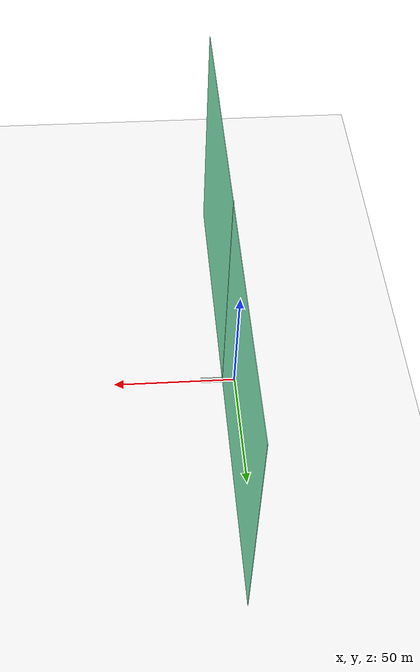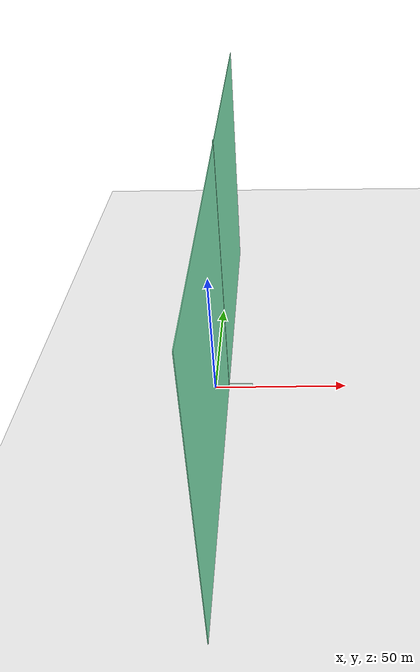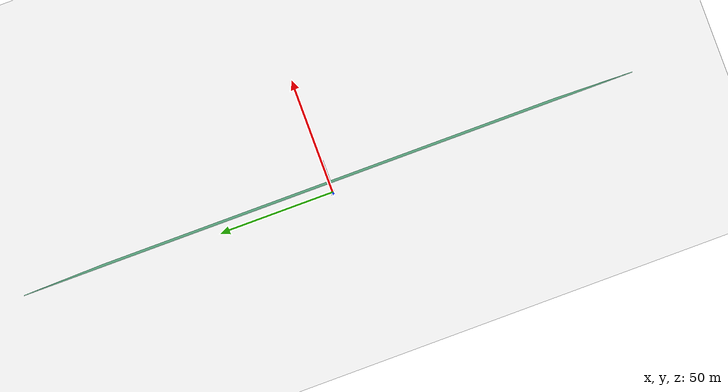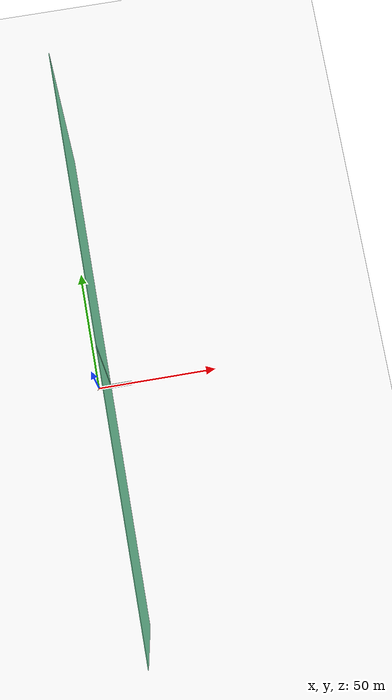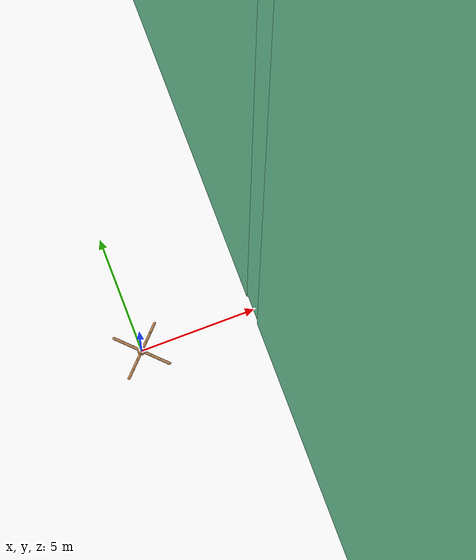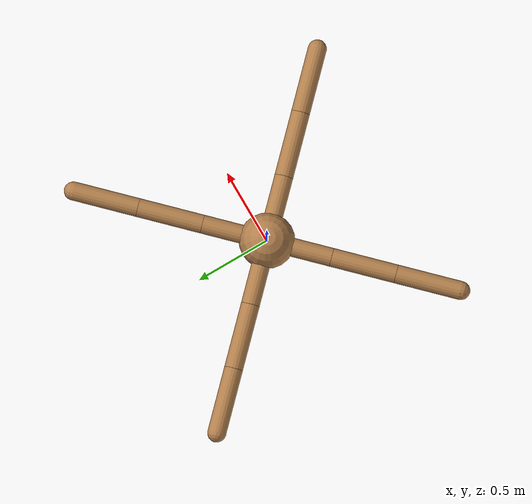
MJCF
<mujoco model="ant">
  <asset>
    <texture name="skybox" type="skybox" builtin="gradient" rgb1=".2 .3 .4" rgb2="0 0 0" width="800" height="800" mark="random" markrgb="1 1 1"/>
    <texture name="grid" type="2d" builtin="checker" rgb1=".2 .1 .2" rgb2=".3 .2 .3" width="300" height="300" mark="edge" markrgb=".3 .2 .3"/>
    <material name="grid" texture="grid" texrepeat="1 1" texuniform="true" reflectance=".2"/>
    <material name="self" rgba=".7 .5 .3 1"/>
  </asset>
  <visual>
    <headlight ambient=".4 .4 .4" diffuse=".8 .8 .8" specular="0.1 0.1 0.1"/>
    <map znear=".001"/>
    <quality shadowsize="16384"/>
  </visual>
  <compiler angle="degree" coordinate="global" inertiafromgeom="true"/>
  <option integrator="RK4" timestep="0.01"/>
  <default>
    <joint armature="1" damping="1" limited="true"/>
    <geom conaffinity="0" condim="3" density="100" friction="1 0.5 0.5" margin="0.01" rgba=".7 .5 .3 1"/>
  </default>
  <worldbody>
    <light cutoff="100" diffuse="1 1 1" dir="0.3 0 -1.3" directional="true" exponent="1" pos="-30 0 130" specular=".1 .1 .1"/>
    <geom conaffinity="1" condim="3" name="floor" pos="0 0 0" rgba="1 1 1 1" size="200 200 .125" type="plane" material="grid"/>
    <geom conaffinity="1" condim="3" name="wall_box_1" type="box" pos="5 50.6 50" size="0.1 50 50" rgba="0.5 0.9 0.7 1" />
    <geom conaffinity="1" condim="3" name="wall_box_2" type="box" pos="5 -50.6 50" size="0.1 50 50" rgba="0.5 0.9 0.7 1" />
    <geom conaffinity="1" condim="3" name="wall_box_3" type="box" pos="5 0 50.9" size="0.1 0.6 50" rgba="0.5 0.9 0.7 1" />
    <geom conaffinity="1" condim="3" name="tunnel_box_1" type="box" pos="9.6 0 1.1" size="4.5 0.6 0.1" rgba="0.5 0.9 0.7 0.3" />
    <geom conaffinity="1" condim="3" name="tunnel_box_2" type="box" pos="9.6 0.7 0.65" size="4.5 0.1 0.65" rgba="0.5 0.9 0.7 0.3" />
    <geom conaffinity="1" condim="3" name="tunnel_box_3" type="box" pos="9.6 -0.7 0.65" size="4.5 0.1 0.65" rgba="0.5 0.9 0.7 0.3" />
    <body name="0" pos="0 0 0">
      <camera name="track" mode="trackcom" pos="0 -3 0.3" xyaxes="1 0 0 0 0 1"/>
      <geom pos="0 0 0" size="0.18" type="sphere"/>
      <joint armature="0" damping="0" limited="false" margin="0.01" name="root" pos="0 0 0" type="free"/>
      <body name="1" pos="0 0 0">
        <geom pos="0 0 0" size="0.01" type="sphere"/>
        <joint axis="0 0 1" name="1_joint" pos="0 0 0" range="-45 45" type="hinge"/>
        <body name="11" pos="0 0 0">
          <joint axis="-0.707107 0.707107 0" name="11_joint" pos="0 0 0" range="-40 40" type="hinge"/>
          <geom fromto="0 0 0 0.3 0.3 0" size="0.06" type="capsule"/>
          <body name="111" pos="0.3 0.3 0">
            <joint axis="-0.707107 0.707107 0" name="111_joint" pos="0.3 0.3 0" range="-40 40" type="hinge"/>
            <geom fromto="0.3 0.3 0 0.6 0.6 0" size="0.06" type="capsule"/>
            <body name="1111" pos="0.6 0.6 0">
              <joint axis="-0.707107 0.707107 0" name="1111_joint" pos="0.6 0.6 0" range="-40 40" type="hinge"/>
              <geom fromto="0.6 0.6 0 0.9 0.9 0" size="0.06" type="capsule"/>
            </body>
          </body>
        </body>
      </body>
      <body name="2" pos="0 0 0">
        <geom pos="0 0 0" size="0.01" type="sphere"/>
        <joint axis="0 0 1" name="2_joint" pos="0 0 0" range="-45 45" type="hinge"/>
        <body name="12" pos="0 0 0">
          <joint axis="-0.707107 -0.707107 0" name="12_joint" pos="0 0 0" range="-40 40" type="hinge"/>
          <geom fromto="0 0 0 -0.3 0.3 0" size="0.06" type="capsule"/>
          <body name="112" pos="-0.3 0.3 0">
            <joint axis="-0.707107 -0.707107 0" name="112_joint" pos="-0.3 0.3 0" range="-40 40" type="hinge"/>
            <geom fromto="-0.3 0.3 0 -0.6 0.6 0" size="0.06" type="capsule"/>
            <body name="1112" pos="-0.6 0.6 0">
              <joint axis="-0.707107 -0.707107 0" name="1112_joint" pos="-0.6 0.6 0" range="-40 40" type="hinge"/>
              <geom fromto="-0.6 0.6 0 -0.9 0.9 0" size="0.06" type="capsule"/>
            </body>
          </body>
        </body>
      </body>
      <body name="3" pos="0 0 0">
        <geom pos="0 0 0" size="0.01" type="sphere"/>
        <joint axis="0 0 1" name="3_joint" pos="0 0 0" range="-45 45" type="hinge"/>
        <body name="13" pos="0 0 0">
          <joint axis="0.707107 -0.707107 0" name="13_joint" pos="0 0 0" range="-40 40" type="hinge"/>
          <geom fromto="0 0 0 -0.3 -0.3 0" size="0.06" type="capsule"/>
          <body name="113" pos="-0.3 -0.3 0">
            <joint axis="0.707107 -0.707107 0" name="113_joint" pos="-0.3 -0.3 0" range="-40 40" type="hinge"/>
            <geom fromto="-0.3 -0.3 0 -0.6 -0.6 0" size="0.06" type="capsule"/>
            <body name="1113" pos="-0.6 -0.6 0">
              <joint axis="0.707107 -0.707107 0" name="1113_joint" pos="-0.6 -0.6 0" range="-40 40" type="hinge"/>
              <geom fromto="-0.6 -0.6 0 -0.9 -0.9 0" size="0.06" type="capsule"/>
            </body>
          </body>
        </body>
      </body>
      <body name="4" pos="0 0 0">
        <geom pos="0 0 0" size="0.01" type="sphere"/>
        <joint axis="0 0 1" name="4_joint" pos="0 0 0" range="-45 45" type="hinge"/>
        <body name="14" pos="0 0 0">
          <joint axis="0.707107 0.707107 0" name="14_joint" pos="0 0 0" range="-40 40" type="hinge"/>
          <geom fromto="0 0 0 0.3 -0.3 0" size="0.06" type="capsule"/>
          <body name="114" pos="0.3 -0.3 0">
            <joint axis="0.707107 0.707107 0" name="114_joint" pos="0.3 -0.3 0" range="-40 40" type="hinge"/>
            <geom fromto="0.3 -0.3 0 0.6 -0.6 0" size="0.06" type="capsule"/>
            <body name="1114" pos="0.6 -0.6 0">
              <joint axis="0.707107 0.707107 0" name="1114_joint" pos="0.6 -0.6 0" range="-40 40" type="hinge"/>
              <geom fromto="0.6 -0.6 0 0.9 -0.9 0" size="0.06" type="capsule"/>
            </body>
          </body>
        </body>
      </body>
    </body>
  </worldbody>
  <actuator>
    <motor ctrllimited="true" ctrlrange="-1.0 1.0" joint="1_joint" gear="300" name="1_joint"/>
    <motor ctrllimited="true" ctrlrange="-1.0 1.0" joint="2_joint" gear="300" name="2_joint"/>
    <motor ctrllimited="true" ctrlrange="-1.0 1.0" joint="3_joint" gear="300" name="3_joint"/>
    <motor ctrllimited="true" ctrlrange="-1.0 1.0" joint="4_joint" gear="300" name="4_joint"/>
    <motor ctrllimited="true" ctrlrange="-1.0 1.0" joint="11_joint" gear="300" name="11_joint"/>
    <motor ctrllimited="true" ctrlrange="-1.0 1.0" joint="111_joint" gear="300" name="111_joint"/>
    <motor ctrllimited="true" ctrlrange="-1.0 1.0" joint="1111_joint" gear="300" name="1111_joint"/>
    <motor ctrllimited="true" ctrlrange="-1.0 1.0" joint="12_joint" gear="300" name="12_joint"/>
    <motor ctrllimited="true" ctrlrange="-1.0 1.0" joint="112_joint" gear="300" name="112_joint"/>
    <motor ctrllimited="true" ctrlrange="-1.0 1.0" joint="1112_joint" gear="300" name="1112_joint"/>
    <motor ctrllimited="true" ctrlrange="-1.0 1.0" joint="13_joint" gear="300" name="13_joint"/>
    <motor ctrllimited="true" ctrlrange="-1.0 1.0" joint="113_joint" gear="300" name="113_joint"/>
    <motor ctrllimited="true" ctrlrange="-1.0 1.0" joint="1113_joint" gear="300" name="1113_joint"/>
    <motor ctrllimited="true" ctrlrange="-1.0 1.0" joint="14_joint" gear="300" name="14_joint"/>
    <motor ctrllimited="true" ctrlrange="-1.0 1.0" joint="114_joint" gear="300" name="114_joint"/>
    <motor ctrllimited="true" ctrlrange="-1.0 1.0" joint="1114_joint" gear="300" name="1114_joint"/>
  </actuator>
</mujoco>
